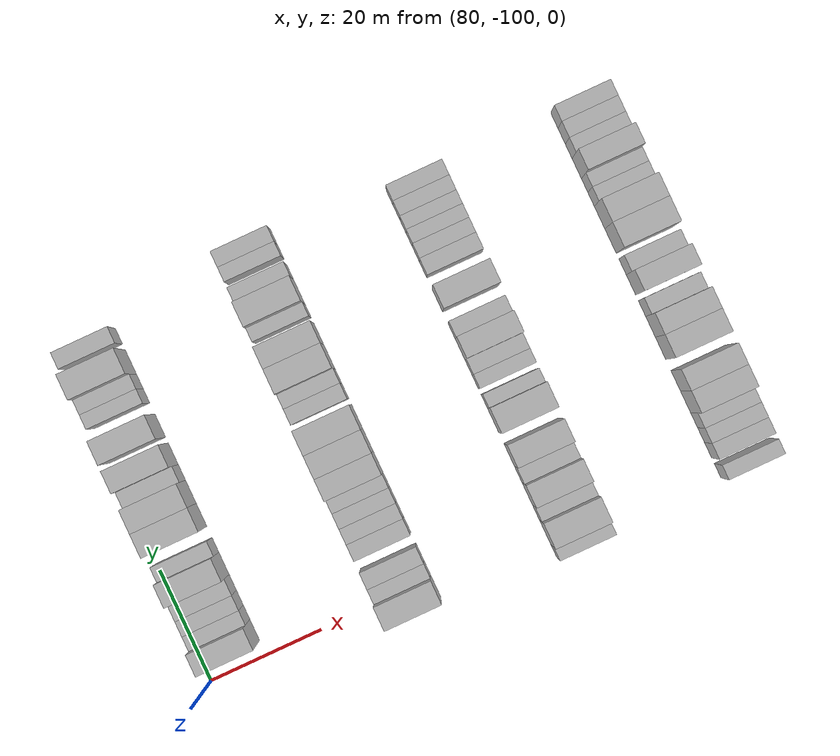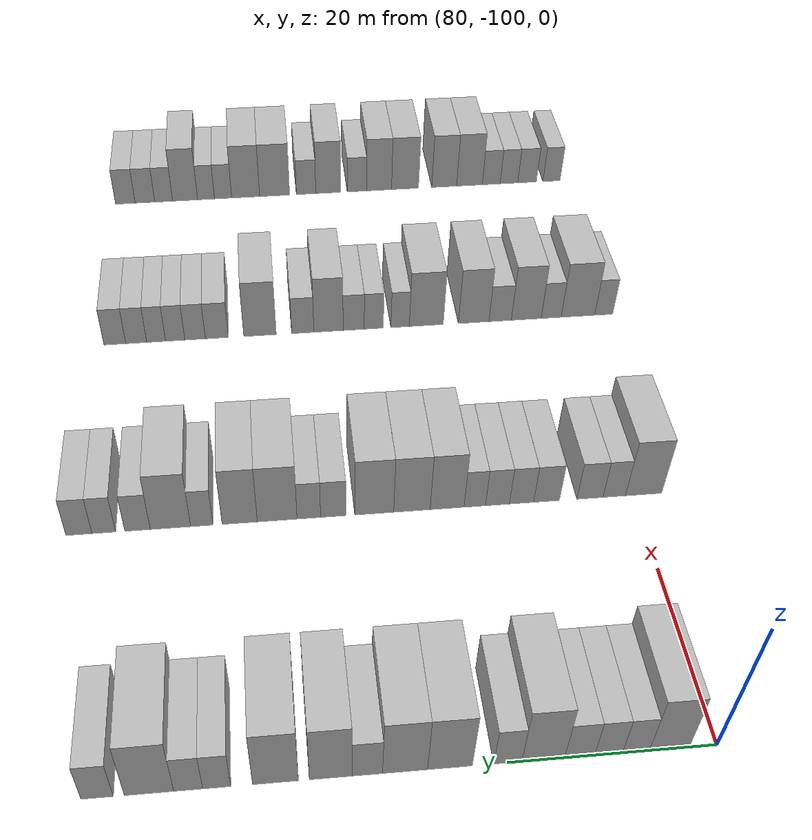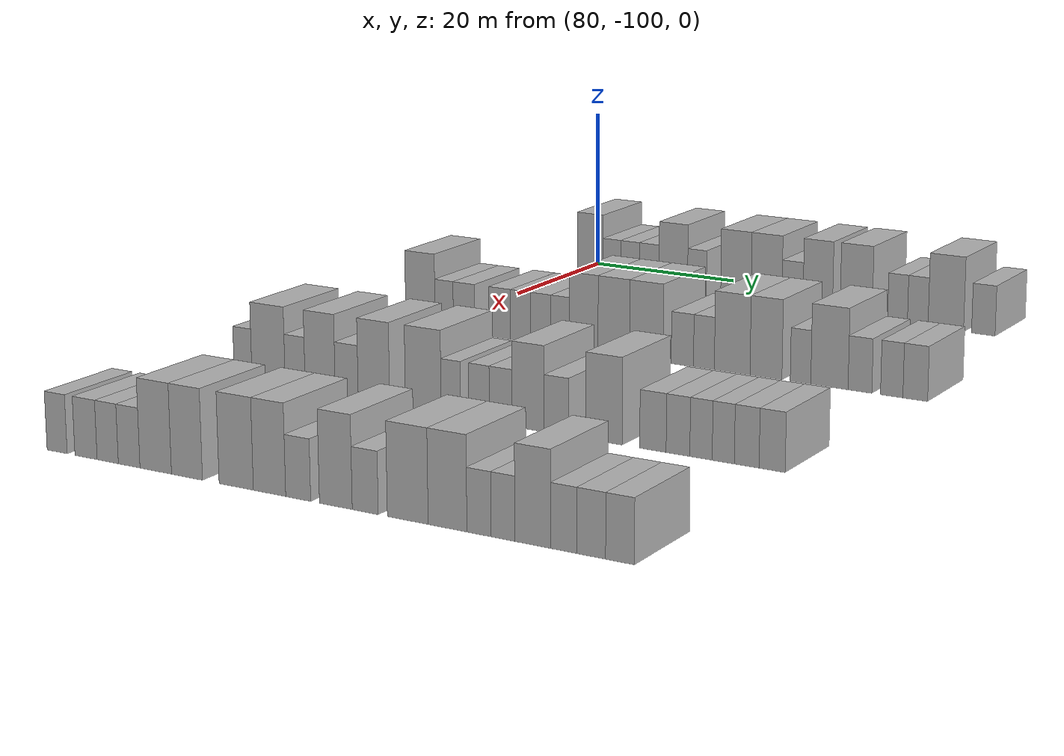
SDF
<sdf version="1.6">
 <world name="default">
  <model name="building_539">
   <static>1</static>
   <pose>85.0000 -95.3878 0 0.000000 0.000000 0.000000</pose>
   <link name="link">
    <pose>0 0 4.50 0 0 0</pose>
    <collision name="collision"><geometry><box><size>10.0000 3.8350 9.0000</size></box></geometry></collision>
    <visual name="visual">
     <cast_shadows>0</cast_shadows>
     <geometry><box><size>10.0000 3.8350 9.0000</size></box></geometry>
     <material>
      <script>
       <uri>model://HANNAS_wall/materials/scripts</uri>
       <uri>model://HANNAS_wall/materials/textures</uri>
       <name>vrc/HANNAS_wall</name>
      </script>
     </material>
    </visual>
   </link>
  </model>
  <model name="building_540">
   <static>1</static>
   <pose>85.0000 -92.1844 0 0.000000 0.000000 0.000000</pose>
   <link name="link">
    <pose>0 0 3.00 0 0 0</pose>
    <collision name="collision"><geometry><box><size>10.0000 2.5719 6.0000</size></box></geometry></collision>
    <visual name="visual">
     <cast_shadows>0</cast_shadows>
     <geometry><box><size>10.0000 2.5719 6.0000</size></box></geometry>
     <material>
      <script>
       <uri>model://HANNAS_wall/materials/scripts</uri>
       <uri>model://HANNAS_wall/materials/textures</uri>
       <name>vrc/HANNAS_wall</name>
      </script>
     </material>
    </visual>
   </link>
  </model>
  <model name="building_541">
   <static>1</static>
   <pose>85.0000 -89.5664 0 0.000000 0.000000 0.000000</pose>
   <link name="link">
    <pose>0 0 3.00 0 0 0</pose>
    <collision name="collision"><geometry><box><size>10.0000 2.6642 6.0000</size></box></geometry></collision>
    <visual name="visual">
     <cast_shadows>0</cast_shadows>
     <geometry><box><size>10.0000 2.6642 6.0000</size></box></geometry>
     <material>
      <script>
       <uri>model://HANNAS_wall/materials/scripts</uri>
       <uri>model://HANNAS_wall/materials/textures</uri>
       <name>vrc/HANNAS_wall</name>
      </script>
     </material>
    </visual>
   </link>
  </model>
  <model name="building_542">
   <static>1</static>
   <pose>85.0000 -86.8094 0 0.000000 0.000000 0.000000</pose>
   <link name="link">
    <pose>0 0 3.00 0 0 0</pose>
    <collision name="collision"><geometry><box><size>10.0000 2.8498 6.0000</size></box></geometry></collision>
    <visual name="visual">
     <cast_shadows>0</cast_shadows>
     <geometry><box><size>10.0000 2.8498 6.0000</size></box></geometry>
     <material>
      <script>
       <uri>model://HANNAS_wall/materials/scripts</uri>
       <uri>model://HANNAS_wall/materials/textures</uri>
       <name>vrc/HANNAS_wall</name>
      </script>
     </material>
    </visual>
   </link>
  </model>
  <model name="building_543">
   <static>1</static>
   <pose>85.0000 -83.3595 0 0.000000 0.000000 0.000000</pose>
   <link name="link">
    <pose>0 0 4.50 0 0 0</pose>
    <collision name="collision"><geometry><box><size>10.0000 4.0500 9.0000</size></box></geometry></collision>
    <visual name="visual">
     <cast_shadows>0</cast_shadows>
     <geometry><box><size>10.0000 4.0500 9.0000</size></box></geometry>
     <material>
      <script>
       <uri>model://HANNAS_wall/materials/scripts</uri>
       <uri>model://HANNAS_wall/materials/textures</uri>
       <name>vrc/HANNAS_wall</name>
      </script>
     </material>
    </visual>
   </link>
  </model>
  <model name="building_544">
   <static>1</static>
   <pose>85.0000 -80.0130 0 0.000000 0.000000 0.000000</pose>
   <link name="link">
    <pose>0 0 3.00 0 0 0</pose>
    <collision name="collision"><geometry><box><size>10.0000 2.6430 6.0000</size></box></geometry></collision>
    <visual name="visual">
     <cast_shadows>0</cast_shadows>
     <geometry><box><size>10.0000 2.6430 6.0000</size></box></geometry>
     <material>
      <script>
       <uri>model://HANNAS_wall/materials/scripts</uri>
       <uri>model://HANNAS_wall/materials/textures</uri>
       <name>vrc/HANNAS_wall</name>
      </script>
     </material>
    </visual>
   </link>
  </model>
  <model name="building_545">
   <static>1</static>
   <pose>85.0000 -74.5912 0 0.000000 0.000000 0.000000</pose>
   <link name="link">
    <pose>0 0 4.50 0 0 0</pose>
    <collision name="collision"><geometry><box><size>10.0000 4.2006 9.0000</size></box></geometry></collision>
    <visual name="visual">
     <cast_shadows>0</cast_shadows>
     <geometry><box><size>10.0000 4.2006 9.0000</size></box></geometry>
     <material>
      <script>
       <uri>model://HANNAS_wall/materials/scripts</uri>
       <uri>model://HANNAS_wall/materials/textures</uri>
       <name>vrc/HANNAS_wall</name>
      </script>
     </material>
    </visual>
   </link>
  </model>
  <model name="building_546">
   <static>1</static>
   <pose>85.0000 -70.3956 0 0.000000 0.000000 0.000000</pose>
   <link name="link">
    <pose>0 0 4.50 0 0 0</pose>
    <collision name="collision"><geometry><box><size>10.0000 4.1907 9.0000</size></box></geometry></collision>
    <visual name="visual">
     <cast_shadows>0</cast_shadows>
     <geometry><box><size>10.0000 4.1907 9.0000</size></box></geometry>
     <material>
      <script>
       <uri>model://HANNAS_wall/materials/scripts</uri>
       <uri>model://HANNAS_wall/materials/textures</uri>
       <name>vrc/HANNAS_wall</name>
      </script>
     </material>
    </visual>
   </link>
  </model>
  <model name="building_547">
   <static>1</static>
   <pose>85.0000 -66.8794 0 0.000000 0.000000 0.000000</pose>
   <link name="link">
    <pose>0 0 3.00 0 0 0</pose>
    <collision name="collision"><geometry><box><size>10.0000 2.8417 6.0000</size></box></geometry></collision>
    <visual name="visual">
     <cast_shadows>0</cast_shadows>
     <geometry><box><size>10.0000 2.8417 6.0000</size></box></geometry>
     <material>
      <script>
       <uri>model://HANNAS_wall/materials/scripts</uri>
       <uri>model://HANNAS_wall/materials/textures</uri>
       <name>vrc/HANNAS_wall</name>
      </script>
     </material>
    </visual>
   </link>
  </model>
  <model name="building_548">
   <static>1</static>
   <pose>85.0000 -63.4931 0 0.000000 0.000000 0.000000</pose>
   <link name="link">
    <pose>0 0 4.50 0 0 0</pose>
    <collision name="collision"><geometry><box><size>10.0000 3.9309 9.0000</size></box></geometry></collision>
    <visual name="visual">
     <cast_shadows>0</cast_shadows>
     <geometry><box><size>10.0000 3.9309 9.0000</size></box></geometry>
     <material>
      <script>
       <uri>model://HANNAS_wall/materials/scripts</uri>
       <uri>model://HANNAS_wall/materials/textures</uri>
       <name>vrc/HANNAS_wall</name>
      </script>
     </material>
    </visual>
   </link>
  </model>
  <model name="building_549">
   <static>1</static>
   <pose>85.0000 -58.4224 0 0.000000 0.000000 0.000000</pose>
   <link name="link">
    <pose>0 0 4.50 0 0 0</pose>
    <collision name="collision"><geometry><box><size>10.0000 4.2105 9.0000</size></box></geometry></collision>
    <visual name="visual">
     <cast_shadows>0</cast_shadows>
     <geometry><box><size>10.0000 4.2105 9.0000</size></box></geometry>
     <material>
      <script>
       <uri>model://HANNAS_wall/materials/scripts</uri>
       <uri>model://HANNAS_wall/materials/textures</uri>
       <name>vrc/HANNAS_wall</name>
      </script>
     </material>
    </visual>
   </link>
  </model>
  <model name="building_550">
   <static>1</static>
   <pose>85.0000 -53.0402 0 0.000000 0.000000 0.000000</pose>
   <link name="link">
    <pose>0 0 3.00 0 0 0</pose>
    <collision name="collision"><geometry><box><size>10.0000 2.5539 6.0000</size></box></geometry></collision>
    <visual name="visual">
     <cast_shadows>0</cast_shadows>
     <geometry><box><size>10.0000 2.5539 6.0000</size></box></geometry>
     <material>
      <script>
       <uri>model://HANNAS_wall/materials/scripts</uri>
       <uri>model://HANNAS_wall/materials/textures</uri>
       <name>vrc/HANNAS_wall</name>
      </script>
     </material>
    </visual>
   </link>
  </model>
  <model name="building_551">
   <static>1</static>
   <pose>85.0000 -50.4473 0 0.000000 0.000000 0.000000</pose>
   <link name="link">
    <pose>0 0 3.00 0 0 0</pose>
    <collision name="collision"><geometry><box><size>10.0000 2.6319 6.0000</size></box></geometry></collision>
    <visual name="visual">
     <cast_shadows>0</cast_shadows>
     <geometry><box><size>10.0000 2.6319 6.0000</size></box></geometry>
     <material>
      <script>
       <uri>model://HANNAS_wall/materials/scripts</uri>
       <uri>model://HANNAS_wall/materials/textures</uri>
       <name>vrc/HANNAS_wall</name>
      </script>
     </material>
    </visual>
   </link>
  </model>
  <model name="building_552">
   <static>1</static>
   <pose>85.0000 -46.8939 0 0.000000 0.000000 0.000000</pose>
   <link name="link">
    <pose>0 0 4.50 0 0 0</pose>
    <collision name="collision"><geometry><box><size>10.0000 4.4749 9.0000</size></box></geometry></collision>
    <visual name="visual">
     <cast_shadows>0</cast_shadows>
     <geometry><box><size>10.0000 4.4749 9.0000</size></box></geometry>
     <material>
      <script>
       <uri>model://HANNAS_wall/materials/scripts</uri>
       <uri>model://HANNAS_wall/materials/textures</uri>
       <name>vrc/HANNAS_wall</name>
      </script>
     </material>
    </visual>
   </link>
  </model>
  <model name="building_553">
   <static>1</static>
   <pose>85.0000 -42.1985 0 0.000000 0.000000 0.000000</pose>
   <link name="link">
    <pose>0 0 3.00 0 0 0</pose>
    <collision name="collision"><geometry><box><size>10.0000 2.9160 6.0000</size></box></geometry></collision>
    <visual name="visual">
     <cast_shadows>0</cast_shadows>
     <geometry><box><size>10.0000 2.9160 6.0000</size></box></geometry>
     <material>
      <script>
       <uri>model://HANNAS_wall/materials/scripts</uri>
       <uri>model://HANNAS_wall/materials/textures</uri>
       <name>vrc/HANNAS_wall</name>
      </script>
     </material>
    </visual>
   </link>
  </model>
  <model name="building_778">
   <static>1</static>
   <pose>115.0000 -101.2284 0 0.000000 0.000000 0.000000</pose>
   <link name="link">
    <pose>0 0 4.50 0 0 0</pose>
    <collision name="collision"><geometry><box><size>10.0000 4.1764 9.0000</size></box></geometry></collision>
    <visual name="visual">
     <cast_shadows>0</cast_shadows>
     <geometry><box><size>10.0000 4.1764 9.0000</size></box></geometry>
     <material>
      <script>
       <uri>model://HANNAS_wall/materials/scripts</uri>
       <uri>model://HANNAS_wall/materials/textures</uri>
       <name>vrc/HANNAS_wall</name>
      </script>
     </material>
    </visual>
   </link>
  </model>
  <model name="building_779">
   <static>1</static>
   <pose>115.0000 -97.8498 0 0.000000 0.000000 0.000000</pose>
   <link name="link">
    <pose>0 0 3.00 0 0 0</pose>
    <collision name="collision"><geometry><box><size>10.0000 2.5810 6.0000</size></box></geometry></collision>
    <visual name="visual">
     <cast_shadows>0</cast_shadows>
     <geometry><box><size>10.0000 2.5810 6.0000</size></box></geometry>
     <material>
      <script>
       <uri>model://HANNAS_wall/materials/scripts</uri>
       <uri>model://HANNAS_wall/materials/textures</uri>
       <name>vrc/HANNAS_wall</name>
      </script>
     </material>
    </visual>
   </link>
  </model>
  <model name="building_780">
   <static>1</static>
   <pose>115.0000 -95.0687 0 0.000000 0.000000 0.000000</pose>
   <link name="link">
    <pose>0 0 3.00 0 0 0</pose>
    <collision name="collision"><geometry><box><size>10.0000 2.9812 6.0000</size></box></geometry></collision>
    <visual name="visual">
     <cast_shadows>0</cast_shadows>
     <geometry><box><size>10.0000 2.9812 6.0000</size></box></geometry>
     <material>
      <script>
       <uri>model://HANNAS_wall/materials/scripts</uri>
       <uri>model://HANNAS_wall/materials/textures</uri>
       <name>vrc/HANNAS_wall</name>
      </script>
     </material>
    </visual>
   </link>
  </model>
  <model name="building_781">
   <static>1</static>
   <pose>115.0000 -90.1058 0 0.000000 0.000000 0.000000</pose>
   <link name="link">
    <pose>0 0 3.00 0 0 0</pose>
    <collision name="collision"><geometry><box><size>10.0000 2.9447 6.0000</size></box></geometry></collision>
    <visual name="visual">
     <cast_shadows>0</cast_shadows>
     <geometry><box><size>10.0000 2.9447 6.0000</size></box></geometry>
     <material>
      <script>
       <uri>model://HANNAS_wall/materials/scripts</uri>
       <uri>model://HANNAS_wall/materials/textures</uri>
       <name>vrc/HANNAS_wall</name>
      </script>
     </material>
    </visual>
   </link>
  </model>
  <model name="building_782">
   <static>1</static>
   <pose>115.0000 -87.2615 0 0.000000 0.000000 0.000000</pose>
   <link name="link">
    <pose>0 0 3.00 0 0 0</pose>
    <collision name="collision"><geometry><box><size>10.0000 2.7438 6.0000</size></box></geometry></collision>
    <visual name="visual">
     <cast_shadows>0</cast_shadows>
     <geometry><box><size>10.0000 2.7438 6.0000</size></box></geometry>
     <material>
      <script>
       <uri>model://HANNAS_wall/materials/scripts</uri>
       <uri>model://HANNAS_wall/materials/textures</uri>
       <name>vrc/HANNAS_wall</name>
      </script>
     </material>
    </visual>
   </link>
  </model>
  <model name="building_783">
   <static>1</static>
   <pose>115.0000 -84.5321 0 0.000000 0.000000 0.000000</pose>
   <link name="link">
    <pose>0 0 3.00 0 0 0</pose>
    <collision name="collision"><geometry><box><size>10.0000 2.7150 6.0000</size></box></geometry></collision>
    <visual name="visual">
     <cast_shadows>0</cast_shadows>
     <geometry><box><size>10.0000 2.7150 6.0000</size></box></geometry>
     <material>
      <script>
       <uri>model://HANNAS_wall/materials/scripts</uri>
       <uri>model://HANNAS_wall/materials/textures</uri>
       <name>vrc/HANNAS_wall</name>
      </script>
     </material>
    </visual>
   </link>
  </model>
  <model name="building_784">
   <static>1</static>
   <pose>115.0000 -81.9609 0 0.000000 0.000000 0.000000</pose>
   <link name="link">
    <pose>0 0 3.00 0 0 0</pose>
    <collision name="collision"><geometry><box><size>10.0000 2.4275 6.0000</size></box></geometry></collision>
    <visual name="visual">
     <cast_shadows>0</cast_shadows>
     <geometry><box><size>10.0000 2.4275 6.0000</size></box></geometry>
     <material>
      <script>
       <uri>model://HANNAS_wall/materials/scripts</uri>
       <uri>model://HANNAS_wall/materials/textures</uri>
       <name>vrc/HANNAS_wall</name>
      </script>
     </material>
    </visual>
   </link>
  </model>
  <model name="building_785">
   <static>1</static>
   <pose>115.0000 -78.8354 0 0.000000 0.000000 0.000000</pose>
   <link name="link">
    <pose>0 0 4.50 0 0 0</pose>
    <collision name="collision"><geometry><box><size>10.0000 3.8235 9.0000</size></box></geometry></collision>
    <visual name="visual">
     <cast_shadows>0</cast_shadows>
     <geometry><box><size>10.0000 3.8235 9.0000</size></box></geometry>
     <material>
      <script>
       <uri>model://HANNAS_wall/materials/scripts</uri>
       <uri>model://HANNAS_wall/materials/textures</uri>
       <name>vrc/HANNAS_wall</name>
      </script>
     </material>
    </visual>
   </link>
  </model>
  <model name="building_786">
   <static>1</static>
   <pose>115.0000 -74.8771 0 0.000000 0.000000 0.000000</pose>
   <link name="link">
    <pose>0 0 4.50 0 0 0</pose>
    <collision name="collision"><geometry><box><size>10.0000 4.0932 9.0000</size></box></geometry></collision>
    <visual name="visual">
     <cast_shadows>0</cast_shadows>
     <geometry><box><size>10.0000 4.0932 9.0000</size></box></geometry>
     <material>
      <script>
       <uri>model://HANNAS_wall/materials/scripts</uri>
       <uri>model://HANNAS_wall/materials/textures</uri>
       <name>vrc/HANNAS_wall</name>
      </script>
     </material>
    </visual>
   </link>
  </model>
  <model name="building_787">
   <static>1</static>
   <pose>115.0000 -70.6596 0 0.000000 0.000000 0.000000</pose>
   <link name="link">
    <pose>0 0 4.50 0 0 0</pose>
    <collision name="collision"><geometry><box><size>10.0000 4.3417 9.0000</size></box></geometry></collision>
    <visual name="visual">
     <cast_shadows>0</cast_shadows>
     <geometry><box><size>10.0000 4.3417 9.0000</size></box></geometry>
     <material>
      <script>
       <uri>model://HANNAS_wall/materials/scripts</uri>
       <uri>model://HANNAS_wall/materials/textures</uri>
       <name>vrc/HANNAS_wall</name>
      </script>
     </material>
    </visual>
   </link>
  </model>
  <model name="building_788">
   <static>1</static>
   <pose>115.0000 -66.0806 0 0.000000 0.000000 0.000000</pose>
   <link name="link">
    <pose>0 0 3.00 0 0 0</pose>
    <collision name="collision"><geometry><box><size>10.0000 2.8163 6.0000</size></box></geometry></collision>
    <visual name="visual">
     <cast_shadows>0</cast_shadows>
     <geometry><box><size>10.0000 2.8163 6.0000</size></box></geometry>
     <material>
      <script>
       <uri>model://HANNAS_wall/materials/scripts</uri>
       <uri>model://HANNAS_wall/materials/textures</uri>
       <name>vrc/HANNAS_wall</name>
      </script>
     </material>
    </visual>
   </link>
  </model>
  <model name="building_789">
   <static>1</static>
   <pose>115.0000 -63.3696 0 0.000000 0.000000 0.000000</pose>
   <link name="link">
    <pose>0 0 3.00 0 0 0</pose>
    <collision name="collision"><geometry><box><size>10.0000 2.6057 6.0000</size></box></geometry></collision>
    <visual name="visual">
     <cast_shadows>0</cast_shadows>
     <geometry><box><size>10.0000 2.6057 6.0000</size></box></geometry>
     <material>
      <script>
       <uri>model://HANNAS_wall/materials/scripts</uri>
       <uri>model://HANNAS_wall/materials/textures</uri>
       <name>vrc/HANNAS_wall</name>
      </script>
     </material>
    </visual>
   </link>
  </model>
  <model name="building_790">
   <static>1</static>
   <pose>115.0000 -59.8717 0 0.000000 0.000000 0.000000</pose>
   <link name="link">
    <pose>0 0 4.50 0 0 0</pose>
    <collision name="collision"><geometry><box><size>10.0000 4.3900 9.0000</size></box></geometry></collision>
    <visual name="visual">
     <cast_shadows>0</cast_shadows>
     <geometry><box><size>10.0000 4.3900 9.0000</size></box></geometry>
     <material>
      <script>
       <uri>model://HANNAS_wall/materials/scripts</uri>
       <uri>model://HANNAS_wall/materials/textures</uri>
       <name>vrc/HANNAS_wall</name>
      </script>
     </material>
    </visual>
   </link>
  </model>
  <model name="building_791">
   <static>1</static>
   <pose>115.0000 -55.7369 0 0.000000 0.000000 0.000000</pose>
   <link name="link">
    <pose>0 0 4.50 0 0 0</pose>
    <collision name="collision"><geometry><box><size>10.0000 3.8796 9.0000</size></box></geometry></collision>
    <visual name="visual">
     <cast_shadows>0</cast_shadows>
     <geometry><box><size>10.0000 3.8796 9.0000</size></box></geometry>
     <material>
      <script>
       <uri>model://HANNAS_wall/materials/scripts</uri>
       <uri>model://HANNAS_wall/materials/textures</uri>
       <name>vrc/HANNAS_wall</name>
      </script>
     </material>
    </visual>
   </link>
  </model>
  <model name="building_792">
   <static>1</static>
   <pose>115.0000 -51.5681 0 0.000000 0.000000 0.000000</pose>
   <link name="link">
    <pose>0 0 3.00 0 0 0</pose>
    <collision name="collision"><geometry><box><size>10.0000 2.4579 6.0000</size></box></geometry></collision>
    <visual name="visual">
     <cast_shadows>0</cast_shadows>
     <geometry><box><size>10.0000 2.4579 6.0000</size></box></geometry>
     <material>
      <script>
       <uri>model://HANNAS_wall/materials/scripts</uri>
       <uri>model://HANNAS_wall/materials/textures</uri>
       <name>vrc/HANNAS_wall</name>
      </script>
     </material>
    </visual>
   </link>
  </model>
  <model name="building_793">
   <static>1</static>
   <pose>115.0000 -48.1373 0 0.000000 0.000000 0.000000</pose>
   <link name="link">
    <pose>0 0 4.50 0 0 0</pose>
    <collision name="collision"><geometry><box><size>10.0000 4.4039 9.0000</size></box></geometry></collision>
    <visual name="visual">
     <cast_shadows>0</cast_shadows>
     <geometry><box><size>10.0000 4.4039 9.0000</size></box></geometry>
     <material>
      <script>
       <uri>model://HANNAS_wall/materials/scripts</uri>
       <uri>model://HANNAS_wall/materials/textures</uri>
       <name>vrc/HANNAS_wall</name>
      </script>
     </material>
    </visual>
   </link>
  </model>
  <model name="building_794">
   <static>1</static>
   <pose>115.0000 -44.5466 0 0.000000 0.000000 0.000000</pose>
   <link name="link">
    <pose>0 0 3.00 0 0 0</pose>
    <collision name="collision"><geometry><box><size>10.0000 2.7774 6.0000</size></box></geometry></collision>
    <visual name="visual">
     <cast_shadows>0</cast_shadows>
     <geometry><box><size>10.0000 2.7774 6.0000</size></box></geometry>
     <material>
      <script>
       <uri>model://HANNAS_wall/materials/scripts</uri>
       <uri>model://HANNAS_wall/materials/textures</uri>
       <name>vrc/HANNAS_wall</name>
      </script>
     </material>
    </visual>
   </link>
  </model>
  <model name="building_795">
   <static>1</static>
   <pose>115.0000 -40.8722 0 0.000000 0.000000 0.000000</pose>
   <link name="link">
    <pose>0 0 3.00 0 0 0</pose>
    <collision name="collision"><geometry><box><size>10.0000 2.5715 6.0000</size></box></geometry></collision>
    <visual name="visual">
     <cast_shadows>0</cast_shadows>
     <geometry><box><size>10.0000 2.5715 6.0000</size></box></geometry>
     <material>
      <script>
       <uri>model://HANNAS_wall/materials/scripts</uri>
       <uri>model://HANNAS_wall/materials/textures</uri>
       <name>vrc/HANNAS_wall</name>
      </script>
     </material>
    </visual>
   </link>
  </model>
  <model name="building_796">
   <static>1</static>
   <pose>115.0000 -38.1796 0 0.000000 0.000000 0.000000</pose>
   <link name="link">
    <pose>0 0 3.00 0 0 0</pose>
    <collision name="collision"><geometry><box><size>10.0000 2.8137 6.0000</size></box></geometry></collision>
    <visual name="visual">
     <cast_shadows>0</cast_shadows>
     <geometry><box><size>10.0000 2.8137 6.0000</size></box></geometry>
     <material>
      <script>
       <uri>model://HANNAS_wall/materials/scripts</uri>
       <uri>model://HANNAS_wall/materials/textures</uri>
       <name>vrc/HANNAS_wall</name>
      </script>
     </material>
    </visual>
   </link>
  </model>
  <model name="building_1009">
   <static>1</static>
   <pose>145.0000 -104.1787 0 0.000000 0.000000 0.000000</pose>
   <link name="link">
    <pose>0 0 3.00 0 0 0</pose>
    <collision name="collision"><geometry><box><size>10.0000 2.4209 6.0000</size></box></geometry></collision>
    <visual name="visual">
     <cast_shadows>0</cast_shadows>
     <geometry><box><size>10.0000 2.4209 6.0000</size></box></geometry>
     <material>
      <script>
       <uri>model://HANNAS_wall/materials/scripts</uri>
       <uri>model://HANNAS_wall/materials/textures</uri>
       <name>vrc/HANNAS_wall</name>
      </script>
     </material>
    </visual>
   </link>
  </model>
  <model name="building_1010">
   <static>1</static>
   <pose>145.0000 -100.7255 0 0.000000 0.000000 0.000000</pose>
   <link name="link">
    <pose>0 0 4.50 0 0 0</pose>
    <collision name="collision"><geometry><box><size>10.0000 4.4854 9.0000</size></box></geometry></collision>
    <visual name="visual">
     <cast_shadows>0</cast_shadows>
     <geometry><box><size>10.0000 4.4854 9.0000</size></box></geometry>
     <material>
      <script>
       <uri>model://HANNAS_wall/materials/scripts</uri>
       <uri>model://HANNAS_wall/materials/textures</uri>
       <name>vrc/HANNAS_wall</name>
      </script>
     </material>
    </visual>
   </link>
  </model>
  <model name="building_1011">
   <static>1</static>
   <pose>145.0000 -97.1535 0 0.000000 0.000000 0.000000</pose>
   <link name="link">
    <pose>0 0 3.00 0 0 0</pose>
    <collision name="collision"><geometry><box><size>10.0000 2.6585 6.0000</size></box></geometry></collision>
    <visual name="visual">
     <cast_shadows>0</cast_shadows>
     <geometry><box><size>10.0000 2.6585 6.0000</size></box></geometry>
     <material>
      <script>
       <uri>model://HANNAS_wall/materials/scripts</uri>
       <uri>model://HANNAS_wall/materials/textures</uri>
       <name>vrc/HANNAS_wall</name>
      </script>
     </material>
    </visual>
   </link>
  </model>
  <model name="building_1012">
   <static>1</static>
   <pose>145.0000 -93.8397 0 0.000000 0.000000 0.000000</pose>
   <link name="link">
    <pose>0 0 4.50 0 0 0</pose>
    <collision name="collision"><geometry><box><size>10.0000 3.9692 9.0000</size></box></geometry></collision>
    <visual name="visual">
     <cast_shadows>0</cast_shadows>
     <geometry><box><size>10.0000 3.9692 9.0000</size></box></geometry>
     <material>
      <script>
       <uri>model://HANNAS_wall/materials/scripts</uri>
       <uri>model://HANNAS_wall/materials/textures</uri>
       <name>vrc/HANNAS_wall</name>
      </script>
     </material>
    </visual>
   </link>
  </model>
  <model name="building_1013">
   <static>1</static>
   <pose>145.0000 -90.3669 0 0.000000 0.000000 0.000000</pose>
   <link name="link">
    <pose>0 0 3.00 0 0 0</pose>
    <collision name="collision"><geometry><box><size>10.0000 2.9763 6.0000</size></box></geometry></collision>
    <visual name="visual">
     <cast_shadows>0</cast_shadows>
     <geometry><box><size>10.0000 2.9763 6.0000</size></box></geometry>
     <material>
      <script>
       <uri>model://HANNAS_wall/materials/scripts</uri>
       <uri>model://HANNAS_wall/materials/textures</uri>
       <name>vrc/HANNAS_wall</name>
      </script>
     </material>
    </visual>
   </link>
  </model>
  <model name="building_1014">
   <static>1</static>
   <pose>145.0000 -86.8603 0 0.000000 0.000000 0.000000</pose>
   <link name="link">
    <pose>0 0 4.50 0 0 0</pose>
    <collision name="collision"><geometry><box><size>10.0000 4.0368 9.0000</size></box></geometry></collision>
    <visual name="visual">
     <cast_shadows>0</cast_shadows>
     <geometry><box><size>10.0000 4.0368 9.0000</size></box></geometry>
     <material>
      <script>
       <uri>model://HANNAS_wall/materials/scripts</uri>
       <uri>model://HANNAS_wall/materials/textures</uri>
       <name>vrc/HANNAS_wall</name>
      </script>
     </material>
    </visual>
   </link>
  </model>
  <model name="building_1015">
   <static>1</static>
   <pose>145.0000 -80.6089 0 0.000000 0.000000 0.000000</pose>
   <link name="link">
    <pose>0 0 4.50 0 0 0</pose>
    <collision name="collision"><geometry><box><size>10.0000 4.4661 9.0000</size></box></geometry></collision>
    <visual name="visual">
     <cast_shadows>0</cast_shadows>
     <geometry><box><size>10.0000 4.4661 9.0000</size></box></geometry>
     <material>
      <script>
       <uri>model://HANNAS_wall/materials/scripts</uri>
       <uri>model://HANNAS_wall/materials/textures</uri>
       <name>vrc/HANNAS_wall</name>
      </script>
     </material>
    </visual>
   </link>
  </model>
  <model name="building_1016">
   <static>1</static>
   <pose>145.0000 -77.1668 0 0.000000 0.000000 0.000000</pose>
   <link name="link">
    <pose>0 0 3.00 0 0 0</pose>
    <collision name="collision"><geometry><box><size>10.0000 2.4181 6.0000</size></box></geometry></collision>
    <visual name="visual">
     <cast_shadows>0</cast_shadows>
     <geometry><box><size>10.0000 2.4181 6.0000</size></box></geometry>
     <material>
      <script>
       <uri>model://HANNAS_wall/materials/scripts</uri>
       <uri>model://HANNAS_wall/materials/textures</uri>
       <name>vrc/HANNAS_wall</name>
      </script>
     </material>
    </visual>
   </link>
  </model>
  <model name="building_1017">
   <static>1</static>
   <pose>145.0000 -73.7085 0 0.000000 0.000000 0.000000</pose>
   <link name="link">
    <pose>0 0 3.00 0 0 0</pose>
    <collision name="collision"><geometry><box><size>10.0000 2.4986 6.0000</size></box></geometry></collision>
    <visual name="visual">
     <cast_shadows>0</cast_shadows>
     <geometry><box><size>10.0000 2.4986 6.0000</size></box></geometry>
     <material>
      <script>
       <uri>model://HANNAS_wall/materials/scripts</uri>
       <uri>model://HANNAS_wall/materials/textures</uri>
       <name>vrc/HANNAS_wall</name>
      </script>
     </material>
    </visual>
   </link>
  </model>
  <model name="building_1018">
   <static>1</static>
   <pose>145.0000 -71.0874 0 0.000000 0.000000 0.000000</pose>
   <link name="link">
    <pose>0 0 3.00 0 0 0</pose>
    <collision name="collision"><geometry><box><size>10.0000 2.7436 6.0000</size></box></geometry></collision>
    <visual name="visual">
     <cast_shadows>0</cast_shadows>
     <geometry><box><size>10.0000 2.7436 6.0000</size></box></geometry>
     <material>
      <script>
       <uri>model://HANNAS_wall/materials/scripts</uri>
       <uri>model://HANNAS_wall/materials/textures</uri>
       <name>vrc/HANNAS_wall</name>
      </script>
     </material>
    </visual>
   </link>
  </model>
  <model name="building_1019">
   <static>1</static>
   <pose>145.0000 -67.8088 0 0.000000 0.000000 0.000000</pose>
   <link name="link">
    <pose>0 0 4.50 0 0 0</pose>
    <collision name="collision"><geometry><box><size>10.0000 3.8135 9.0000</size></box></geometry></collision>
    <visual name="visual">
     <cast_shadows>0</cast_shadows>
     <geometry><box><size>10.0000 3.8135 9.0000</size></box></geometry>
     <material>
      <script>
       <uri>model://HANNAS_wall/materials/scripts</uri>
       <uri>model://HANNAS_wall/materials/textures</uri>
       <name>vrc/HANNAS_wall</name>
      </script>
     </material>
    </visual>
   </link>
  </model>
  <model name="building_1020">
   <static>1</static>
   <pose>145.0000 -64.4714 0 0.000000 0.000000 0.000000</pose>
   <link name="link">
    <pose>0 0 3.00 0 0 0</pose>
    <collision name="collision"><geometry><box><size>10.0000 2.8614 6.0000</size></box></geometry></collision>
    <visual name="visual">
     <cast_shadows>0</cast_shadows>
     <geometry><box><size>10.0000 2.8614 6.0000</size></box></geometry>
     <material>
      <script>
       <uri>model://HANNAS_wall/materials/scripts</uri>
       <uri>model://HANNAS_wall/materials/textures</uri>
       <name>vrc/HANNAS_wall</name>
      </script>
     </material>
    </visual>
   </link>
  </model>
  <model name="building_1021">
   <static>1</static>
   <pose>145.0000 -58.9504 0 0.000000 0.000000 0.000000</pose>
   <link name="link">
    <pose>0 0 4.50 0 0 0</pose>
    <collision name="collision"><geometry><box><size>10.0000 4.1805 9.0000</size></box></geometry></collision>
    <visual name="visual">
     <cast_shadows>0</cast_shadows>
     <geometry><box><size>10.0000 4.1805 9.0000</size></box></geometry>
     <material>
      <script>
       <uri>model://HANNAS_wall/materials/scripts</uri>
       <uri>model://HANNAS_wall/materials/textures</uri>
       <name>vrc/HANNAS_wall</name>
      </script>
     </material>
    </visual>
   </link>
  </model>
  <model name="building_1022">
   <static>1</static>
   <pose>145.0000 -53.3833 0 0.000000 0.000000 0.000000</pose>
   <link name="link">
    <pose>0 0 3.00 0 0 0</pose>
    <collision name="collision"><geometry><box><size>10.0000 2.9537 6.0000</size></box></geometry></collision>
    <visual name="visual">
     <cast_shadows>0</cast_shadows>
     <geometry><box><size>10.0000 2.9537 6.0000</size></box></geometry>
     <material>
      <script>
       <uri>model://HANNAS_wall/materials/scripts</uri>
       <uri>model://HANNAS_wall/materials/textures</uri>
       <name>vrc/HANNAS_wall</name>
      </script>
     </material>
    </visual>
   </link>
  </model>
  <model name="building_1023">
   <static>1</static>
   <pose>145.0000 -50.5869 0 0.000000 0.000000 0.000000</pose>
   <link name="link">
    <pose>0 0 3.00 0 0 0</pose>
    <collision name="collision"><geometry><box><size>10.0000 2.6391 6.0000</size></box></geometry></collision>
    <visual name="visual">
     <cast_shadows>0</cast_shadows>
     <geometry><box><size>10.0000 2.6391 6.0000</size></box></geometry>
     <material>
      <script>
       <uri>model://HANNAS_wall/materials/scripts</uri>
       <uri>model://HANNAS_wall/materials/textures</uri>
       <name>vrc/HANNAS_wall</name>
      </script>
     </material>
    </visual>
   </link>
  </model>
  <model name="building_1024">
   <static>1</static>
   <pose>145.0000 -48.0389 0 0.000000 0.000000 0.000000</pose>
   <link name="link">
    <pose>0 0 3.00 0 0 0</pose>
    <collision name="collision"><geometry><box><size>10.0000 2.4570 6.0000</size></box></geometry></collision>
    <visual name="visual">
     <cast_shadows>0</cast_shadows>
     <geometry><box><size>10.0000 2.4570 6.0000</size></box></geometry>
     <material>
      <script>
       <uri>model://HANNAS_wall/materials/scripts</uri>
       <uri>model://HANNAS_wall/materials/textures</uri>
       <name>vrc/HANNAS_wall</name>
      </script>
     </material>
    </visual>
   </link>
  </model>
  <model name="building_1025">
   <static>1</static>
   <pose>145.0000 -45.6064 0 0.000000 0.000000 0.000000</pose>
   <link name="link">
    <pose>0 0 3.00 0 0 0</pose>
    <collision name="collision"><geometry><box><size>10.0000 2.4080 6.0000</size></box></geometry></collision>
    <visual name="visual">
     <cast_shadows>0</cast_shadows>
     <geometry><box><size>10.0000 2.4080 6.0000</size></box></geometry>
     <material>
      <script>
       <uri>model://HANNAS_wall/materials/scripts</uri>
       <uri>model://HANNAS_wall/materials/textures</uri>
       <name>vrc/HANNAS_wall</name>
      </script>
     </material>
    </visual>
   </link>
  </model>
  <model name="building_1026">
   <static>1</static>
   <pose>145.0000 -43.0712 0 0.000000 0.000000 0.000000</pose>
   <link name="link">
    <pose>0 0 3.00 0 0 0</pose>
    <collision name="collision"><geometry><box><size>10.0000 2.6623 6.0000</size></box></geometry></collision>
    <visual name="visual">
     <cast_shadows>0</cast_shadows>
     <geometry><box><size>10.0000 2.6623 6.0000</size></box></geometry>
     <material>
      <script>
       <uri>model://HANNAS_wall/materials/scripts</uri>
       <uri>model://HANNAS_wall/materials/textures</uri>
       <name>vrc/HANNAS_wall</name>
      </script>
     </material>
    </visual>
   </link>
  </model>
  <model name="building_1027">
   <static>1</static>
   <pose>145.0000 -40.3529 0 0.000000 0.000000 0.000000</pose>
   <link name="link">
    <pose>0 0 3.00 0 0 0</pose>
    <collision name="collision"><geometry><box><size>10.0000 2.7743 6.0000</size></box></geometry></collision>
    <visual name="visual">
     <cast_shadows>0</cast_shadows>
     <geometry><box><size>10.0000 2.7743 6.0000</size></box></geometry>
     <material>
      <script>
       <uri>model://HANNAS_wall/materials/scripts</uri>
       <uri>model://HANNAS_wall/materials/textures</uri>
       <name>vrc/HANNAS_wall</name>
      </script>
     </material>
    </visual>
   </link>
  </model>
  <model name="building_1242">
   <static>1</static>
   <pose>175.0000 -103.7200 0 0.000000 0.000000 0.000000</pose>
   <link name="link">
    <pose>0 0 3.00 0 0 0</pose>
    <collision name="collision"><geometry><box><size>10.0000 2.5980 6.0000</size></box></geometry></collision>
    <visual name="visual">
     <cast_shadows>0</cast_shadows>
     <geometry><box><size>10.0000 2.5980 6.0000</size></box></geometry>
     <material>
      <script>
       <uri>model://HANNAS_wall/materials/scripts</uri>
       <uri>model://HANNAS_wall/materials/textures</uri>
       <name>vrc/HANNAS_wall</name>
      </script>
     </material>
    </visual>
   </link>
  </model>
  <model name="building_1243">
   <static>1</static>
   <pose>175.0000 -100.0007 0 0.000000 0.000000 0.000000</pose>
   <link name="link">
    <pose>0 0 3.00 0 0 0</pose>
    <collision name="collision"><geometry><box><size>10.0000 2.8407 6.0000</size></box></geometry></collision>
    <visual name="visual">
     <cast_shadows>0</cast_shadows>
     <geometry><box><size>10.0000 2.8407 6.0000</size></box></geometry>
     <material>
      <script>
       <uri>model://HANNAS_wall/materials/scripts</uri>
       <uri>model://HANNAS_wall/materials/textures</uri>
       <name>vrc/HANNAS_wall</name>
      </script>
     </material>
    </visual>
   </link>
  </model>
  <model name="building_1244">
   <static>1</static>
   <pose>175.0000 -97.2408 0 0.000000 0.000000 0.000000</pose>
   <link name="link">
    <pose>0 0 3.00 0 0 0</pose>
    <collision name="collision"><geometry><box><size>10.0000 2.6791 6.0000</size></box></geometry></collision>
    <visual name="visual">
     <cast_shadows>0</cast_shadows>
     <geometry><box><size>10.0000 2.6791 6.0000</size></box></geometry>
     <material>
      <script>
       <uri>model://HANNAS_wall/materials/scripts</uri>
       <uri>model://HANNAS_wall/materials/textures</uri>
       <name>vrc/HANNAS_wall</name>
      </script>
     </material>
    </visual>
   </link>
  </model>
  <model name="building_1245">
   <static>1</static>
   <pose>175.0000 -94.5482 0 0.000000 0.000000 0.000000</pose>
   <link name="link">
    <pose>0 0 3.00 0 0 0</pose>
    <collision name="collision"><geometry><box><size>10.0000 2.7060 6.0000</size></box></geometry></collision>
    <visual name="visual">
     <cast_shadows>0</cast_shadows>
     <geometry><box><size>10.0000 2.7060 6.0000</size></box></geometry>
     <material>
      <script>
       <uri>model://HANNAS_wall/materials/scripts</uri>
       <uri>model://HANNAS_wall/materials/textures</uri>
       <name>vrc/HANNAS_wall</name>
      </script>
     </material>
    </visual>
   </link>
  </model>
  <model name="building_1246">
   <static>1</static>
   <pose>175.0000 -91.2523 0 0.000000 0.000000 0.000000</pose>
   <link name="link">
    <pose>0 0 4.50 0 0 0</pose>
    <collision name="collision"><geometry><box><size>10.0000 3.8858 9.0000</size></box></geometry></collision>
    <visual name="visual">
     <cast_shadows>0</cast_shadows>
     <geometry><box><size>10.0000 3.8858 9.0000</size></box></geometry>
     <material>
      <script>
       <uri>model://HANNAS_wall/materials/scripts</uri>
       <uri>model://HANNAS_wall/materials/textures</uri>
       <name>vrc/HANNAS_wall</name>
      </script>
     </material>
    </visual>
   </link>
  </model>
  <model name="building_1247">
   <static>1</static>
   <pose>175.0000 -87.4301 0 0.000000 0.000000 0.000000</pose>
   <link name="link">
    <pose>0 0 4.50 0 0 0</pose>
    <collision name="collision"><geometry><box><size>10.0000 3.7587 9.0000</size></box></geometry></collision>
    <visual name="visual">
     <cast_shadows>0</cast_shadows>
     <geometry><box><size>10.0000 3.7587 9.0000</size></box></geometry>
     <material>
      <script>
       <uri>model://HANNAS_wall/materials/scripts</uri>
       <uri>model://HANNAS_wall/materials/textures</uri>
       <name>vrc/HANNAS_wall</name>
      </script>
     </material>
    </visual>
   </link>
  </model>
  <model name="building_1248">
   <static>1</static>
   <pose>175.0000 -81.5248 0 0.000000 0.000000 0.000000</pose>
   <link name="link">
    <pose>0 0 4.50 0 0 0</pose>
    <collision name="collision"><geometry><box><size>10.0000 4.0518 9.0000</size></box></geometry></collision>
    <visual name="visual">
     <cast_shadows>0</cast_shadows>
     <geometry><box><size>10.0000 4.0518 9.0000</size></box></geometry>
     <material>
      <script>
       <uri>model://HANNAS_wall/materials/scripts</uri>
       <uri>model://HANNAS_wall/materials/textures</uri>
       <name>vrc/HANNAS_wall</name>
      </script>
     </material>
    </visual>
   </link>
  </model>
  <model name="building_1249">
   <static>1</static>
   <pose>175.0000 -77.6186 0 0.000000 0.000000 0.000000</pose>
   <link name="link">
    <pose>0 0 4.50 0 0 0</pose>
    <collision name="collision"><geometry><box><size>10.0000 3.7607 9.0000</size></box></geometry></collision>
    <visual name="visual">
     <cast_shadows>0</cast_shadows>
     <geometry><box><size>10.0000 3.7607 9.0000</size></box></geometry>
     <material>
      <script>
       <uri>model://HANNAS_wall/materials/scripts</uri>
       <uri>model://HANNAS_wall/materials/textures</uri>
       <name>vrc/HANNAS_wall</name>
      </script>
     </material>
    </visual>
   </link>
  </model>
  <model name="building_1250">
   <static>1</static>
   <pose>175.0000 -74.3078 0 0.000000 0.000000 0.000000</pose>
   <link name="link">
    <pose>0 0 3.00 0 0 0</pose>
    <collision name="collision"><geometry><box><size>10.0000 2.8607 6.0000</size></box></geometry></collision>
    <visual name="visual">
     <cast_shadows>0</cast_shadows>
     <geometry><box><size>10.0000 2.8607 6.0000</size></box></geometry>
     <material>
      <script>
       <uri>model://HANNAS_wall/materials/scripts</uri>
       <uri>model://HANNAS_wall/materials/textures</uri>
       <name>vrc/HANNAS_wall</name>
      </script>
     </material>
    </visual>
   </link>
  </model>
  <model name="building_1251">
   <static>1</static>
   <pose>175.0000 -70.0313 0 0.000000 0.000000 0.000000</pose>
   <link name="link">
    <pose>0 0 4.50 0 0 0</pose>
    <collision name="collision"><geometry><box><size>10.0000 3.6924 9.0000</size></box></geometry></collision>
    <visual name="visual">
     <cast_shadows>0</cast_shadows>
     <geometry><box><size>10.0000 3.6924 9.0000</size></box></geometry>
     <material>
      <script>
       <uri>model://HANNAS_wall/materials/scripts</uri>
       <uri>model://HANNAS_wall/materials/textures</uri>
       <name>vrc/HANNAS_wall</name>
      </script>
     </material>
    </visual>
   </link>
  </model>
  <model name="building_1252">
   <static>1</static>
   <pose>175.0000 -66.7428 0 0.000000 0.000000 0.000000</pose>
   <link name="link">
    <pose>0 0 3.00 0 0 0</pose>
    <collision name="collision"><geometry><box><size>10.0000 2.8847 6.0000</size></box></geometry></collision>
    <visual name="visual">
     <cast_shadows>0</cast_shadows>
     <geometry><box><size>10.0000 2.8847 6.0000</size></box></geometry>
     <material>
      <script>
       <uri>model://HANNAS_wall/materials/scripts</uri>
       <uri>model://HANNAS_wall/materials/textures</uri>
       <name>vrc/HANNAS_wall</name>
      </script>
     </material>
    </visual>
   </link>
  </model>
  <model name="building_1253">
   <static>1</static>
   <pose>175.0000 -62.0834 0 0.000000 0.000000 0.000000</pose>
   <link name="link">
    <pose>0 0 4.50 0 0 0</pose>
    <collision name="collision"><geometry><box><size>10.0000 4.4341 9.0000</size></box></geometry></collision>
    <visual name="visual">
     <cast_shadows>0</cast_shadows>
     <geometry><box><size>10.0000 4.4341 9.0000</size></box></geometry>
     <material>
      <script>
       <uri>model://HANNAS_wall/materials/scripts</uri>
       <uri>model://HANNAS_wall/materials/textures</uri>
       <name>vrc/HANNAS_wall</name>
      </script>
     </material>
    </visual>
   </link>
  </model>
  <model name="building_1254">
   <static>1</static>
   <pose>175.0000 -57.8018 0 0.000000 0.000000 0.000000</pose>
   <link name="link">
    <pose>0 0 4.50 0 0 0</pose>
    <collision name="collision"><geometry><box><size>10.0000 4.1291 9.0000</size></box></geometry></collision>
    <visual name="visual">
     <cast_shadows>0</cast_shadows>
     <geometry><box><size>10.0000 4.1291 9.0000</size></box></geometry>
     <material>
      <script>
       <uri>model://HANNAS_wall/materials/scripts</uri>
       <uri>model://HANNAS_wall/materials/textures</uri>
       <name>vrc/HANNAS_wall</name>
      </script>
     </material>
    </visual>
   </link>
  </model>
  <model name="building_1255">
   <static>1</static>
   <pose>175.0000 -54.4698 0 0.000000 0.000000 0.000000</pose>
   <link name="link">
    <pose>0 0 3.00 0 0 0</pose>
    <collision name="collision"><geometry><box><size>10.0000 2.5349 6.0000</size></box></geometry></collision>
    <visual name="visual">
     <cast_shadows>0</cast_shadows>
     <geometry><box><size>10.0000 2.5349 6.0000</size></box></geometry>
     <material>
      <script>
       <uri>model://HANNAS_wall/materials/scripts</uri>
       <uri>model://HANNAS_wall/materials/textures</uri>
       <name>vrc/HANNAS_wall</name>
      </script>
     </material>
    </visual>
   </link>
  </model>
  <model name="building_1256">
   <static>1</static>
   <pose>175.0000 -51.9660 0 0.000000 0.000000 0.000000</pose>
   <link name="link">
    <pose>0 0 3.00 0 0 0</pose>
    <collision name="collision"><geometry><box><size>10.0000 2.4727 6.0000</size></box></geometry></collision>
    <visual name="visual">
     <cast_shadows>0</cast_shadows>
     <geometry><box><size>10.0000 2.4727 6.0000</size></box></geometry>
     <material>
      <script>
       <uri>model://HANNAS_wall/materials/scripts</uri>
       <uri>model://HANNAS_wall/materials/textures</uri>
       <name>vrc/HANNAS_wall</name>
      </script>
     </material>
    </visual>
   </link>
  </model>
  <model name="building_1257">
   <static>1</static>
   <pose>175.0000 -48.8943 0 0.000000 0.000000 0.000000</pose>
   <link name="link">
    <pose>0 0 4.50 0 0 0</pose>
    <collision name="collision"><geometry><box><size>10.0000 3.6706 9.0000</size></box></geometry></collision>
    <visual name="visual">
     <cast_shadows>0</cast_shadows>
     <geometry><box><size>10.0000 3.6706 9.0000</size></box></geometry>
     <material>
      <script>
       <uri>model://HANNAS_wall/materials/scripts</uri>
       <uri>model://HANNAS_wall/materials/textures</uri>
       <name>vrc/HANNAS_wall</name>
      </script>
     </material>
    </visual>
   </link>
  </model>
  <model name="building_1258">
   <static>1</static>
   <pose>175.0000 -45.7474 0 0.000000 0.000000 0.000000</pose>
   <link name="link">
    <pose>0 0 3.00 0 0 0</pose>
    <collision name="collision"><geometry><box><size>10.0000 2.6232 6.0000</size></box></geometry></collision>
    <visual name="visual">
     <cast_shadows>0</cast_shadows>
     <geometry><box><size>10.0000 2.6232 6.0000</size></box></geometry>
     <material>
      <script>
       <uri>model://HANNAS_wall/materials/scripts</uri>
       <uri>model://HANNAS_wall/materials/textures</uri>
       <name>vrc/HANNAS_wall</name>
      </script>
     </material>
    </visual>
   </link>
  </model>
  <model name="building_1259">
   <static>1</static>
   <pose>175.0000 -43.0047 0 0.000000 0.000000 0.000000</pose>
   <link name="link">
    <pose>0 0 3.00 0 0 0</pose>
    <collision name="collision"><geometry><box><size>10.0000 2.8623 6.0000</size></box></geometry></collision>
    <visual name="visual">
     <cast_shadows>0</cast_shadows>
     <geometry><box><size>10.0000 2.8623 6.0000</size></box></geometry>
     <material>
      <script>
       <uri>model://HANNAS_wall/materials/scripts</uri>
       <uri>model://HANNAS_wall/materials/textures</uri>
       <name>vrc/HANNAS_wall</name>
      </script>
     </material>
    </visual>
   </link>
  </model>
  <model name="building_1260">
   <static>1</static>
   <pose>175.0000 -40.1553 0 0.000000 0.000000 0.000000</pose>
   <link name="link">
    <pose>0 0 3.00 0 0 0</pose>
    <collision name="collision"><geometry><box><size>10.0000 2.8365 6.0000</size></box></geometry></collision>
    <visual name="visual">
     <cast_shadows>0</cast_shadows>
     <geometry><box><size>10.0000 2.8365 6.0000</size></box></geometry>
     <material>
      <script>
       <uri>model://HANNAS_wall/materials/scripts</uri>
       <uri>model://HANNAS_wall/materials/textures</uri>
       <name>vrc/HANNAS_wall</name>
      </script>
     </material>
    </visual>
   </link>
  </model>
 </world>
</sdf>
